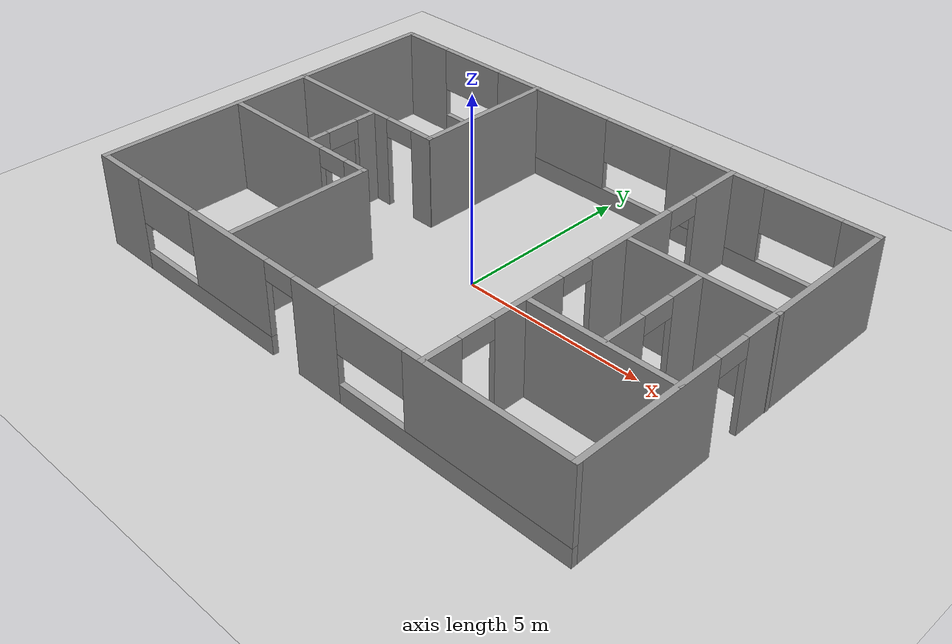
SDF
<sdf version="1.7">
 <world name="default">
  <light name="sun" type="directional">
   <pose>0 0 10 0 -0 0</pose>
   <diffuse>0.8 0.8 0.8 1</diffuse>
   <specular>0.2 0.2 0.2 1</specular>
   <attenuation>
    <range>1000</range>
    <constant>0.9</constant>
    <linear>0.01</linear>
    <quadratic>0.001</quadratic>
   </attenuation>
   <direction>-0.5 0.1 -0.9</direction>
   <spot><inner_angle>0</inner_angle><outer_angle>0</outer_angle><falloff>0</falloff></spot>
  </light>
  <model name="ground_plane">
   <static>1</static>
   <link name="link">
    <collision name="collision">
     <geometry><plane><normal>0 0 1</normal><size>100 100</size></plane></geometry>
     <surface><friction><ode><mu>100</mu><mu2>50</mu2></ode></friction></surface>
    </collision>
    <visual name="visual">
     <cast_shadows>0</cast_shadows>
     <geometry><plane><normal>0 0 1</normal><size>100 100</size></plane></geometry>
     <material>
      <script><uri>file://media/materials/scripts/gazebo.material</uri><name>Gazebo/Grey</name></script>
     </material>
    </visual>
   </link>
  </model>
  <gravity>0 0 -9.8</gravity>
  <magnetic_field>6e-06 2.3e-05 -4.2e-05</magnetic_field>
  <atmosphere type="adiabatic"/>
  <physics type="ode">
   <max_step_size>0.001</max_step_size>
   <real_time_factor>1</real_time_factor>
   <real_time_update_rate>1000</real_time_update_rate>
  </physics>
  <scene><ambient>0.4 0.4 0.4 1</ambient><background>0.7 0.7 0.7 1</background><shadows>1</shadows></scene>
  <audio><device>default</device></audio>
  <spherical_coordinates>
   <surface_model>EARTH_WGS84</surface_model>
   <latitude_deg>0</latitude_deg>
   <longitude_deg>0</longitude_deg>
   <elevation>0</elevation>
   <heading_deg>0</heading_deg>
  </spherical_coordinates>
  <model name="Untitled_0">
   <pose>0.000832 0.041446 0 0 -0 0</pose>
   <link name="Wall_10">
    <pose>-0.001306 -4.929 0 0 -0 0</pose>
    <visual name="Wall_10_Visual_0">
     <pose>-6.70697 0 1.25 0 -0 0</pose>
     <geometry><box><size>1.58605 0.15 2.5</size></box></geometry>
     <material>
      <script><uri>file://media/materials/scripts/gazebo.material</uri><name>Gazebo/Grey</name></script>
      <ambient>1 1 1 1</ambient>
     </material>
     <meta><layer>0</layer></meta>
    </visual>
    <collision name="Wall_10_Collision_0">
     <geometry><box><size>1.58605 0.15 2.5</size></box></geometry>
     <pose>-6.70697 0 1.25 0 -0 0</pose>
    </collision>
    <visual name="Wall_10_Visual_1">
     <pose>0.408659 0 1.25 0 -0 0</pose>
     <geometry><box><size>1.37193 0.15 2.5</size></box></geometry>
     <material>
      <script><uri>file://media/materials/scripts/gazebo.material</uri><name>Gazebo/Grey</name></script>
      <ambient>1 1 1 1</ambient>
     </material>
     <meta><layer>0</layer></meta>
    </visual>
    <collision name="Wall_10_Collision_1">
     <geometry><box><size>1.37193 0.15 2.5</size></box></geometry>
     <pose>0.408659 0 1.25 0 -0 0</pose>
    </collision>
    <visual name="Wall_10_Visual_2">
     <pose>-3.54563 0 0.25 0 -0 0</pose>
     <geometry><box><size>4.73664 0.15 0.5</size></box></geometry>
     <material>
      <script><uri>file://media/materials/scripts/gazebo.material</uri><name>Gazebo/Grey</name></script>
      <ambient>1 1 1 1</ambient>
     </material>
     <meta><layer>0</layer></meta>
    </visual>
    <collision name="Wall_10_Collision_2">
     <geometry><box><size>4.73664 0.15 0.5</size></box></geometry>
     <pose>-3.54563 0 0.25 0 -0 0</pose>
    </collision>
    <visual name="Wall_10_Visual_3">
     <pose>4.29731 0 0.25 0 -0 0</pose>
     <geometry><box><size>6.40537 0.15 0.5</size></box></geometry>
     <material>
      <script><uri>file://media/materials/scripts/gazebo.material</uri><name>Gazebo/Grey</name></script>
      <ambient>1 1 1 1</ambient>
     </material>
     <meta><layer>0</layer></meta>
    </visual>
    <collision name="Wall_10_Collision_3">
     <geometry><box><size>6.40537 0.15 0.5</size></box></geometry>
     <pose>4.29731 0 0.25 0 -0 0</pose>
    </collision>
    <visual name="Wall_10_Visual_4">
     <pose>-2.54563 0 1.5 0 -0 0</pose>
     <geometry><box><size>2.73664 0.15 2</size></box></geometry>
     <material>
      <script><uri>file://media/materials/scripts/gazebo.material</uri><name>Gazebo/Grey</name></script>
      <ambient>1 1 1 1</ambient>
     </material>
     <meta><layer>0</layer></meta>
    </visual>
    <collision name="Wall_10_Collision_4">
     <geometry><box><size>2.73664 0.15 2</size></box></geometry>
     <pose>-2.54563 0 1.5 0 -0 0</pose>
    </collision>
    <visual name="Wall_10_Visual_5">
     <pose>-2.54563 0 1.5 0 -0 0</pose>
     <geometry><box><size>2.73664 0.15 2</size></box></geometry>
     <material>
      <script><uri>file://media/materials/scripts/gazebo.material</uri><name>Gazebo/Grey</name></script>
      <ambient>1 1 1 1</ambient>
     </material>
     <meta><layer>0</layer></meta>
    </visual>
    <collision name="Wall_10_Collision_5">
     <geometry><box><size>2.73664 0.15 2</size></box></geometry>
     <pose>-2.54563 0 1.5 0 -0 0</pose>
    </collision>
    <visual name="Wall_10_Visual_6">
     <pose>5.29731 0 1.5 0 -0 0</pose>
     <geometry><box><size>4.40537 0.15 2</size></box></geometry>
     <material>
      <script><uri>file://media/materials/scripts/gazebo.material</uri><name>Gazebo/Grey</name></script>
      <ambient>1 1 1 1</ambient>
     </material>
     <meta><layer>0</layer></meta>
    </visual>
    <collision name="Wall_10_Collision_6">
     <geometry><box><size>4.40537 0.15 2</size></box></geometry>
     <pose>5.29731 0 1.5 0 -0 0</pose>
    </collision>
    <visual name="Wall_10_Visual_7">
     <pose>-4.91395 0 1.9 0 -0 0</pose>
     <geometry><box><size>2 0.15 1.2</size></box></geometry>
     <material>
      <script><uri>file://media/materials/scripts/gazebo.material</uri><name>Gazebo/Grey</name></script>
      <ambient>1 1 1 1</ambient>
     </material>
     <meta><layer>0</layer></meta>
    </visual>
    <collision name="Wall_10_Collision_7">
     <geometry><box><size>2 0.15 1.2</size></box></geometry>
     <pose>-4.91395 0 1.9 0 -0 0</pose>
    </collision>
    <visual name="Wall_10_Visual_8">
     <pose>2.09463 0 1.9 0 -0 0</pose>
     <geometry><box><size>2 0.15 1.2</size></box></geometry>
     <material>
      <script><uri>file://media/materials/scripts/gazebo.material</uri><name>Gazebo/Grey</name></script>
      <ambient>1 1 1 1</ambient>
     </material>
     <meta><layer>0</layer></meta>
    </visual>
    <collision name="Wall_10_Collision_8">
     <geometry><box><size>2 0.15 1.2</size></box></geometry>
     <pose>2.09463 0 1.9 0 -0 0</pose>
    </collision>
    <visual name="Wall_10_Visual_9">
     <pose>-0.727308 0 2.25 0 -0 0</pose>
     <geometry><box><size>0.9 0.15 0.5</size></box></geometry>
     <material>
      <script><uri>file://media/materials/scripts/gazebo.material</uri><name>Gazebo/Grey</name></script>
      <ambient>1 1 1 1</ambient>
     </material>
     <meta><layer>0</layer></meta>
    </visual>
    <collision name="Wall_10_Collision_9">
     <geometry><box><size>0.9 0.15 0.5</size></box></geometry>
     <pose>-0.727308 0 2.25 0 -0 0</pose>
    </collision>
    <visual name="Wall_10_Visual_10">
     <pose>-0.727308 0 2.25 0 -0 0</pose>
     <geometry><box><size>0.9 0.15 0.5</size></box></geometry>
     <material>
      <script><uri>file://media/materials/scripts/gazebo.material</uri><name>Gazebo/Grey</name></script>
      <ambient>1 1 1 1</ambient>
     </material>
     <meta><layer>0</layer></meta>
    </visual>
    <collision name="Wall_10_Collision_10">
     <geometry><box><size>0.9 0.15 0.5</size></box></geometry>
     <pose>-0.727308 0 2.25 0 -0 0</pose>
    </collision>
   </link>
   <link name="Wall_12">
    <collision name="Wall_12_Collision">
     <geometry><box><size>4 0.15 2.5</size></box></geometry>
     <pose>0 0 1.25 0 -0 0</pose>
    </collision>
    <visual name="Wall_12_Visual">
     <pose>0 0 1.25 0 -0 0</pose>
     <geometry><box><size>4 0.15 2.5</size></box></geometry>
     <material>
      <script><uri>file://media/materials/scripts/gazebo.material</uri><name>Gazebo/Grey</name></script>
      <ambient>1 1 1 1</ambient>
     </material>
     <meta><layer>0</layer></meta>
    </visual>
    <pose>5.51149 1.06619 0 0 -0 3.14159</pose>
   </link>
   <link name="Wall_14">
    <pose>3.57368 0.003998 0 0 -0 -1.5708</pose>
    <visual name="Wall_14_Visual_0">
     <pose>-4.22758 0 1.25 0 -0 0</pose>
     <geometry><box><size>1.54484 0.15 2.5</size></box></geometry>
     <material>
      <script><uri>file://media/materials/scripts/gazebo.material</uri><name>Gazebo/Grey</name></script>
      <ambient>1 1 1 1</ambient>
     </material>
     <meta><layer>0</layer></meta>
    </visual>
    <collision name="Wall_14_Collision_0">
     <geometry><box><size>1.54484 0.15 2.5</size></box></geometry>
     <pose>-4.22758 0 1.25 0 -0 0</pose>
    </collision>
    <visual name="Wall_14_Visual_1">
     <pose>-1.21254 0 1.25 0 -0 0</pose>
     <geometry><box><size>2.68524 0.15 2.5</size></box></geometry>
     <material>
      <script><uri>file://media/materials/scripts/gazebo.material</uri><name>Gazebo/Grey</name></script>
      <ambient>1 1 1 1</ambient>
     </material>
     <meta><layer>0</layer></meta>
    </visual>
    <collision name="Wall_14_Collision_1">
     <geometry><box><size>2.68524 0.15 2.5</size></box></geometry>
     <pose>-1.21254 0 1.25 0 -0 0</pose>
    </collision>
    <visual name="Wall_14_Visual_2">
     <pose>2.03731 0 1.25 0 -0 0</pose>
     <geometry><box><size>2.01446 0.15 2.5</size></box></geometry>
     <material>
      <script><uri>file://media/materials/scripts/gazebo.material</uri><name>Gazebo/Grey</name></script>
      <ambient>1 1 1 1</ambient>
     </material>
     <meta><layer>0</layer></meta>
    </visual>
    <collision name="Wall_14_Collision_2">
     <geometry><box><size>2.01446 0.15 2.5</size></box></geometry>
     <pose>2.03731 0 1.25 0 -0 0</pose>
    </collision>
    <visual name="Wall_14_Visual_3">
     <pose>4.47227 0 1.25 0 -0 0</pose>
     <geometry><box><size>1.05546 0.15 2.5</size></box></geometry>
     <material>
      <script><uri>file://media/materials/scripts/gazebo.material</uri><name>Gazebo/Grey</name></script>
      <ambient>1 1 1 1</ambient>
     </material>
     <meta><layer>0</layer></meta>
    </visual>
    <collision name="Wall_14_Collision_3">
     <geometry><box><size>1.05546 0.15 2.5</size></box></geometry>
     <pose>4.47227 0 1.25 0 -0 0</pose>
    </collision>
    <visual name="Wall_14_Visual_4">
     <pose>-3.00516 0 2.25 0 -0 0</pose>
     <geometry><box><size>0.9 0.15 0.5</size></box></geometry>
     <material>
      <script><uri>file://media/materials/scripts/gazebo.material</uri><name>Gazebo/Grey</name></script>
      <ambient>1 1 1 1</ambient>
     </material>
     <meta><layer>0</layer></meta>
    </visual>
    <collision name="Wall_14_Collision_4">
     <geometry><box><size>0.9 0.15 0.5</size></box></geometry>
     <pose>-3.00516 0 2.25 0 -0 0</pose>
    </collision>
    <visual name="Wall_14_Visual_5">
     <pose>0.580085 0 2.25 0 -0 0</pose>
     <geometry><box><size>0.9 0.15 0.5</size></box></geometry>
     <material>
      <script><uri>file://media/materials/scripts/gazebo.material</uri><name>Gazebo/Grey</name></script>
      <ambient>1 1 1 1</ambient>
     </material>
     <meta><layer>0</layer></meta>
    </visual>
    <collision name="Wall_14_Collision_5">
     <geometry><box><size>0.9 0.15 0.5</size></box></geometry>
     <pose>0.580085 0 2.25 0 -0 0</pose>
    </collision>
    <visual name="Wall_14_Visual_6">
     <pose>3.49454 0 2.25 0 -0 0</pose>
     <geometry><box><size>0.9 0.15 0.5</size></box></geometry>
     <material>
      <script><uri>file://media/materials/scripts/gazebo.material</uri><name>Gazebo/Grey</name></script>
      <ambient>1 1 1 1</ambient>
     </material>
     <meta><layer>0</layer></meta>
    </visual>
    <collision name="Wall_14_Collision_6">
     <geometry><box><size>0.9 0.15 0.5</size></box></geometry>
     <pose>3.49454 0 2.25 0 -0 0</pose>
    </collision>
   </link>
   <link name="Wall_18">
    <collision name="Wall_18_Collision">
     <geometry><box><size>4 0.15 2.5</size></box></geometry>
     <pose>0 0 1.25 0 -0 0</pose>
    </collision>
    <visual name="Wall_18_Visual">
     <pose>0 0 1.25 0 -0 0</pose>
     <geometry><box><size>4 0.15 2.5</size></box></geometry>
     <material>
      <script><uri>file://media/materials/scripts/gazebo.material</uri><name>Gazebo/Grey</name></script>
      <ambient>1 1 1 1</ambient>
     </material>
     <meta><layer>0</layer></meta>
    </visual>
    <pose>5.49868 -2.07958 0 0 -0 0</pose>
   </link>
   <link name="Wall_20">
    <pose>-5.01149 1.06619 0 0 -0 0</pose>
    <visual name="Wall_20_Visual_0">
     <pose>-0.779225 0 1.25 0 -0 0</pose>
     <geometry><box><size>3.44155 0.15 2.5</size></box></geometry>
     <material>
      <script><uri>file://media/materials/scripts/gazebo.material</uri><name>Gazebo/Grey</name></script>
      <ambient>1 1 1 1</ambient>
     </material>
     <meta><layer>0</layer></meta>
    </visual>
    <collision name="Wall_20_Collision_0">
     <geometry><box><size>3.44155 0.15 2.5</size></box></geometry>
     <pose>-0.779225 0 1.25 0 -0 0</pose>
    </collision>
    <visual name="Wall_20_Visual_1">
     <pose>2.17077 0 1.25 0 -0 0</pose>
     <geometry><box><size>0.65845 0.15 2.5</size></box></geometry>
     <material>
      <script><uri>file://media/materials/scripts/gazebo.material</uri><name>Gazebo/Grey</name></script>
      <ambient>1 1 1 1</ambient>
     </material>
     <meta><layer>0</layer></meta>
    </visual>
    <collision name="Wall_20_Collision_1">
     <geometry><box><size>0.65845 0.15 2.5</size></box></geometry>
     <pose>2.17077 0 1.25 0 -0 0</pose>
    </collision>
    <visual name="Wall_20_Visual_2">
     <pose>1.39155 0 2.25 0 -0 0</pose>
     <geometry><box><size>0.9 0.15 0.5</size></box></geometry>
     <material>
      <script><uri>file://media/materials/scripts/gazebo.material</uri><name>Gazebo/Grey</name></script>
      <ambient>1 1 1 1</ambient>
     </material>
     <meta><layer>0</layer></meta>
    </visual>
    <collision name="Wall_20_Collision_2">
     <geometry><box><size>0.9 0.15 0.5</size></box></geometry>
     <pose>1.39155 0 2.25 0 -0 0</pose>
    </collision>
   </link>
   <link name="Wall_22">
    <collision name="Wall_22_Collision">
     <geometry><box><size>4 0.15 2.5</size></box></geometry>
     <pose>0 0 1.25 0 -0 0</pose>
    </collision>
    <visual name="Wall_22_Visual">
     <pose>0 0 1.25 0 -0 0</pose>
     <geometry><box><size>4 0.15 2.5</size></box></geometry>
     <material>
      <script><uri>file://media/materials/scripts/gazebo.material</uri><name>Gazebo/Grey</name></script>
      <ambient>1 1 1 1</ambient>
     </material>
     <meta><layer>0</layer></meta>
    </visual>
    <pose>-2.57906 3.004 0 0 -0 -1.5708</pose>
   </link>
   <link name="Wall_24">
    <pose>-5.01149 -1.06183 0 0 -0 0</pose>
    <visual name="Wall_24_Visual_0">
     <pose>-0.79079 0 1.25 0 -0 0</pose>
     <geometry><box><size>3.41842 0.15 2.5</size></box></geometry>
     <material>
      <script><uri>file://media/materials/scripts/gazebo.material</uri><name>Gazebo/Grey</name></script>
      <ambient>1 1 1 1</ambient>
     </material>
     <meta><layer>0</layer></meta>
    </visual>
    <collision name="Wall_24_Collision_0">
     <geometry><box><size>3.41842 0.15 2.5</size></box></geometry>
     <pose>-0.79079 0 1.25 0 -0 0</pose>
    </collision>
    <visual name="Wall_24_Visual_1">
     <pose>2.15921 0 1.25 0 -0 0</pose>
     <geometry><box><size>0.68158 0.15 2.5</size></box></geometry>
     <material>
      <script><uri>file://media/materials/scripts/gazebo.material</uri><name>Gazebo/Grey</name></script>
      <ambient>1 1 1 1</ambient>
     </material>
     <meta><layer>0</layer></meta>
    </visual>
    <collision name="Wall_24_Collision_1">
     <geometry><box><size>0.68158 0.15 2.5</size></box></geometry>
     <pose>2.15921 0 1.25 0 -0 0</pose>
    </collision>
    <visual name="Wall_24_Visual_2">
     <pose>1.36842 0 2.25 0 -0 0</pose>
     <geometry><box><size>0.9 0.15 0.5</size></box></geometry>
     <material>
      <script><uri>file://media/materials/scripts/gazebo.material</uri><name>Gazebo/Grey</name></script>
      <ambient>1 1 1 1</ambient>
     </material>
     <meta><layer>0</layer></meta>
    </visual>
    <collision name="Wall_24_Collision_2">
     <geometry><box><size>0.9 0.15 0.5</size></box></geometry>
     <pose>1.36842 0 2.25 0 -0 0</pose>
    </collision>
   </link>
   <link name="Wall_26">
    <collision name="Wall_26_Collision">
     <geometry><box><size>4 0.15 2.5</size></box></geometry>
     <pose>0 0 1.25 0 -0 0</pose>
    </collision>
    <visual name="Wall_26_Visual">
     <pose>0 0 1.25 0 -0 0</pose>
     <geometry><box><size>4 0.15 2.5</size></box></geometry>
     <material>
      <script><uri>file://media/materials/scripts/gazebo.material</uri><name>Gazebo/Grey</name></script>
      <ambient>1 1 1 1</ambient>
     </material>
     <meta><layer>0</layer></meta>
    </visual>
    <pose>-2.55593 -2.98683 0 0 -0 -1.5708</pose>
   </link>
   <link name="Wall_28">
    <pose>-4.59143 0.002403 0 0 -0 -1.5708</pose>
    <visual name="Wall_28_Visual_0">
     <pose>-0.713322 0 1.25 0 -0 0</pose>
     <geometry><box><size>0.573355 0.15 2.5</size></box></geometry>
     <material>
      <script><uri>file://media/materials/scripts/gazebo.material</uri><name>Gazebo/Grey</name></script>
      <ambient>1 1 1 1</ambient>
     </material>
     <meta><layer>0</layer></meta>
    </visual>
    <collision name="Wall_28_Collision_0">
     <geometry><box><size>0.573355 0.15 2.5</size></box></geometry>
     <pose>-0.713322 0 1.25 0 -0 0</pose>
    </collision>
    <visual name="Wall_28_Visual_1">
     <pose>0.736678 0 1.25 0 -0 0</pose>
     <geometry><box><size>0.526645 0.15 2.5</size></box></geometry>
     <material>
      <script><uri>file://media/materials/scripts/gazebo.material</uri><name>Gazebo/Grey</name></script>
      <ambient>1 1 1 1</ambient>
     </material>
     <meta><layer>0</layer></meta>
    </visual>
    <collision name="Wall_28_Collision_1">
     <geometry><box><size>0.526645 0.15 2.5</size></box></geometry>
     <pose>0.736678 0 1.25 0 -0 0</pose>
    </collision>
    <visual name="Wall_28_Visual_2">
     <pose>0.023355 0 2.25 0 -0 0</pose>
     <geometry><box><size>0.9 0.15 0.5</size></box></geometry>
     <material>
      <script><uri>file://media/materials/scripts/gazebo.material</uri><name>Gazebo/Grey</name></script>
      <ambient>1 1 1 1</ambient>
     </material>
     <meta><layer>0</layer></meta>
    </visual>
    <collision name="Wall_28_Collision_2">
     <geometry><box><size>0.9 0.15 0.5</size></box></geometry>
     <pose>0.023355 0 2.25 0 -0 0</pose>
    </collision>
   </link>
   <link name="Wall_3">
    <pose>-0.001306 4.921 0 0 -0 0</pose>
    <visual name="Wall_3_Visual_0">
     <pose>-6.71854 0 1.25 0 -0 0</pose>
     <geometry><box><size>1.56292 0.15 2.5</size></box></geometry>
     <material>
      <script><uri>file://media/materials/scripts/gazebo.material</uri><name>Gazebo/Grey</name></script>
      <ambient>1 1 1 1</ambient>
     </material>
     <meta><layer>0</layer></meta>
    </visual>
    <collision name="Wall_3_Collision_0">
     <geometry><box><size>1.56292 0.15 2.5</size></box></geometry>
     <pose>-6.71854 0 1.25 0 -0 0</pose>
    </collision>
    <visual name="Wall_3_Visual_1">
     <pose>0.781461 0 0.25 0 -0 0</pose>
     <geometry><box><size>13.4371 0.15 0.5</size></box></geometry>
     <material>
      <script><uri>file://media/materials/scripts/gazebo.material</uri><name>Gazebo/Grey</name></script>
      <ambient>1 1 1 1</ambient>
     </material>
     <meta><layer>0</layer></meta>
    </visual>
    <collision name="Wall_3_Collision_1">
     <geometry><box><size>13.4371 0.15 0.5</size></box></geometry>
     <pose>0.781461 0 0.25 0 -0 0</pose>
    </collision>
    <visual name="Wall_3_Visual_2">
     <pose>-2.05732 0 1.5 0 -0 0</pose>
     <geometry><box><size>3.75952 0.15 2</size></box></geometry>
     <material>
      <script><uri>file://media/materials/scripts/gazebo.material</uri><name>Gazebo/Grey</name></script>
      <ambient>1 1 1 1</ambient>
     </material>
     <meta><layer>0</layer></meta>
    </visual>
    <collision name="Wall_3_Collision_2">
     <geometry><box><size>3.75952 0.15 2</size></box></geometry>
     <pose>-2.05732 0 1.5 0 -0 0</pose>
    </collision>
    <visual name="Wall_3_Visual_3">
     <pose>3.1702 0 1.5 0 -0 0</pose>
     <geometry><box><size>2.69551 0.15 2</size></box></geometry>
     <material>
      <script><uri>file://media/materials/scripts/gazebo.material</uri><name>Gazebo/Grey</name></script>
      <ambient>1 1 1 1</ambient>
     </material>
     <meta><layer>0</layer></meta>
    </visual>
    <collision name="Wall_3_Collision_3">
     <geometry><box><size>2.69551 0.15 2</size></box></geometry>
     <pose>3.1702 0 1.5 0 -0 0</pose>
    </collision>
    <visual name="Wall_3_Visual_4">
     <pose>7.00898 0 1.5 0 -0 0</pose>
     <geometry><box><size>0.982044 0.15 2</size></box></geometry>
     <material>
      <script><uri>file://media/materials/scripts/gazebo.material</uri><name>Gazebo/Grey</name></script>
      <ambient>1 1 1 1</ambient>
     </material>
     <meta><layer>0</layer></meta>
    </visual>
    <collision name="Wall_3_Collision_4">
     <geometry><box><size>0.982044 0.15 2</size></box></geometry>
     <pose>7.00898 0 1.5 0 -0 0</pose>
    </collision>
    <visual name="Wall_3_Visual_5">
     <pose>-4.93708 0 1.9 0 -0 0</pose>
     <geometry><box><size>2 0.15 1.2</size></box></geometry>
     <material>
      <script><uri>file://media/materials/scripts/gazebo.material</uri><name>Gazebo/Grey</name></script>
      <ambient>1 1 1 1</ambient>
     </material>
     <meta><layer>0</layer></meta>
    </visual>
    <collision name="Wall_3_Collision_5">
     <geometry><box><size>2 0.15 1.2</size></box></geometry>
     <pose>-4.93708 0 1.9 0 -0 0</pose>
    </collision>
    <visual name="Wall_3_Visual_6">
     <pose>0.822443 0 1.9 0 -0 0</pose>
     <geometry><box><size>2 0.15 1.2</size></box></geometry>
     <material>
      <script><uri>file://media/materials/scripts/gazebo.material</uri><name>Gazebo/Grey</name></script>
      <ambient>1 1 1 1</ambient>
     </material>
     <meta><layer>0</layer></meta>
    </visual>
    <collision name="Wall_3_Collision_6">
     <geometry><box><size>2 0.15 1.2</size></box></geometry>
     <pose>0.822443 0 1.9 0 -0 0</pose>
    </collision>
    <visual name="Wall_3_Visual_7">
     <pose>5.51796 0 1.9 0 -0 0</pose>
     <geometry><box><size>2 0.15 1.2</size></box></geometry>
     <material>
      <script><uri>file://media/materials/scripts/gazebo.material</uri><name>Gazebo/Grey</name></script>
      <ambient>1 1 1 1</ambient>
     </material>
     <meta><layer>0</layer></meta>
    </visual>
    <collision name="Wall_3_Collision_7">
     <geometry><box><size>2 0.15 1.2</size></box></geometry>
     <pose>5.51796 0 1.9 0 -0 0</pose>
    </collision>
   </link>
   <link name="Wall_32">
    <pose>5.58604 -0.547598 0 0 -0 -1.5708</pose>
    <visual name="Wall_32_Visual_0">
     <pose>-1.05515 0 1.25 0 -0 0</pose>
     <geometry><box><size>0.989706 0.15 2.5</size></box></geometry>
     <material>
      <script><uri>file://media/materials/scripts/gazebo.material</uri><name>Gazebo/Grey</name></script>
      <ambient>1 1 1 1</ambient>
     </material>
     <meta><layer>0</layer></meta>
    </visual>
    <collision name="Wall_32_Collision_0">
     <geometry><box><size>0.989706 0.15 2.5</size></box></geometry>
     <pose>-1.05515 0 1.25 0 -0 0</pose>
    </collision>
    <visual name="Wall_32_Visual_1">
     <pose>0.944853 0 1.25 0 -0 0</pose>
     <geometry><box><size>1.21029 0.15 2.5</size></box></geometry>
     <material>
      <script><uri>file://media/materials/scripts/gazebo.material</uri><name>Gazebo/Grey</name></script>
      <ambient>1 1 1 1</ambient>
     </material>
     <meta><layer>0</layer></meta>
    </visual>
    <collision name="Wall_32_Collision_1">
     <geometry><box><size>1.21029 0.15 2.5</size></box></geometry>
     <pose>0.944853 0 1.25 0 -0 0</pose>
    </collision>
    <visual name="Wall_32_Visual_2">
     <pose>-0.110294 0 2.25 0 -0 0</pose>
     <geometry><box><size>0.9 0.15 0.5</size></box></geometry>
     <material>
      <script><uri>file://media/materials/scripts/gazebo.material</uri><name>Gazebo/Grey</name></script>
      <ambient>1 1 1 1</ambient>
     </material>
     <meta><layer>0</layer></meta>
    </visual>
    <collision name="Wall_32_Collision_2">
     <geometry><box><size>0.9 0.15 0.5</size></box></geometry>
     <pose>-0.110294 0 2.25 0 -0 0</pose>
    </collision>
   </link>
   <link name="Wall_4">
    <pose>7.42369 -0.003998 0 0 -0 -1.5708</pose>
    <visual name="Wall_4_Visual_0">
     <pose>-2.49678 0 1.25 0 -0 0</pose>
     <geometry><box><size>5.00644 0.15 2.5</size></box></geometry>
     <material>
      <script><uri>file://media/materials/scripts/gazebo.material</uri><name>Gazebo/Grey</name></script>
      <ambient>1 1 1 1</ambient>
     </material>
     <meta><layer>0</layer></meta>
    </visual>
    <collision name="Wall_4_Collision_0">
     <geometry><box><size>5.00644 0.15 2.5</size></box></geometry>
     <pose>-2.49678 0 1.25 0 -0 0</pose>
    </collision>
    <visual name="Wall_4_Visual_1">
     <pose>2.95322 0 1.25 0 -0 0</pose>
     <geometry><box><size>4.09356 0.15 2.5</size></box></geometry>
     <material>
      <script><uri>file://media/materials/scripts/gazebo.material</uri><name>Gazebo/Grey</name></script>
      <ambient>1 1 1 1</ambient>
     </material>
     <meta><layer>0</layer></meta>
    </visual>
    <collision name="Wall_4_Collision_1">
     <geometry><box><size>4.09356 0.15 2.5</size></box></geometry>
     <pose>2.95322 0 1.25 0 -0 0</pose>
    </collision>
    <visual name="Wall_4_Visual_2">
     <pose>0.456436 0 2.25 0 -0 0</pose>
     <geometry><box><size>0.9 0.15 0.5</size></box></geometry>
     <material>
      <script><uri>file://media/materials/scripts/gazebo.material</uri><name>Gazebo/Grey</name></script>
      <ambient>1 1 1 1</ambient>
     </material>
     <meta><layer>0</layer></meta>
    </visual>
    <collision name="Wall_4_Collision_2">
     <geometry><box><size>0.9 0.15 0.5</size></box></geometry>
     <pose>0.456436 0 2.25 0 -0 0</pose>
    </collision>
   </link>
   <link name="Wall_9">
    <collision name="Wall_9_Collision">
     <geometry><box><size>10 0.15 2.5</size></box></geometry>
     <pose>0 0 1.25 0 -0 0</pose>
    </collision>
    <visual name="Wall_9_Visual">
     <pose>0 0 1.25 0 -0 0</pose>
     <geometry><box><size>10 0.15 2.5</size></box></geometry>
     <material>
      <script><uri>file://media/materials/scripts/gazebo.material</uri><name>Gazebo/Grey</name></script>
      <ambient>1 1 1 1</ambient>
     </material>
     <meta><layer>0</layer></meta>
    </visual>
    <pose>-7.42631 -0.003998 0 0 -0 -1.5708</pose>
   </link>
   <static>1</static>
  </model>
 </world>
</sdf>
